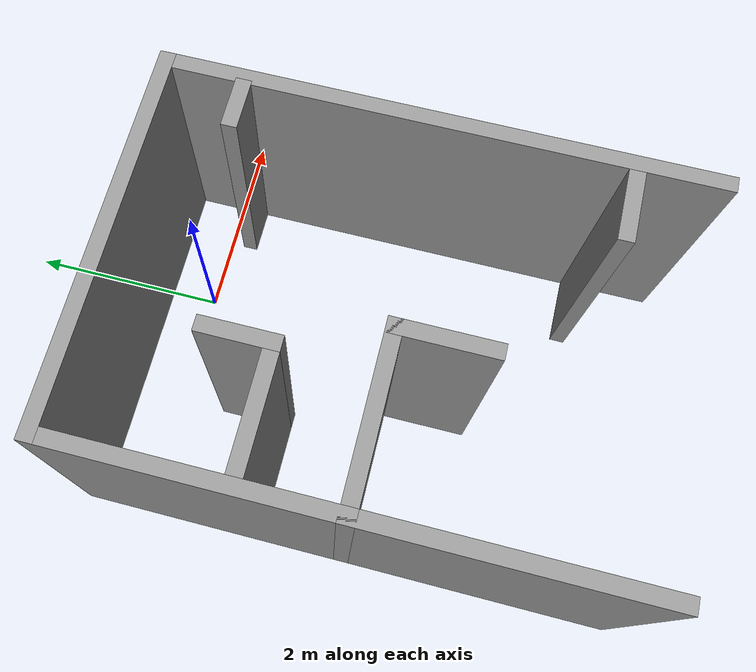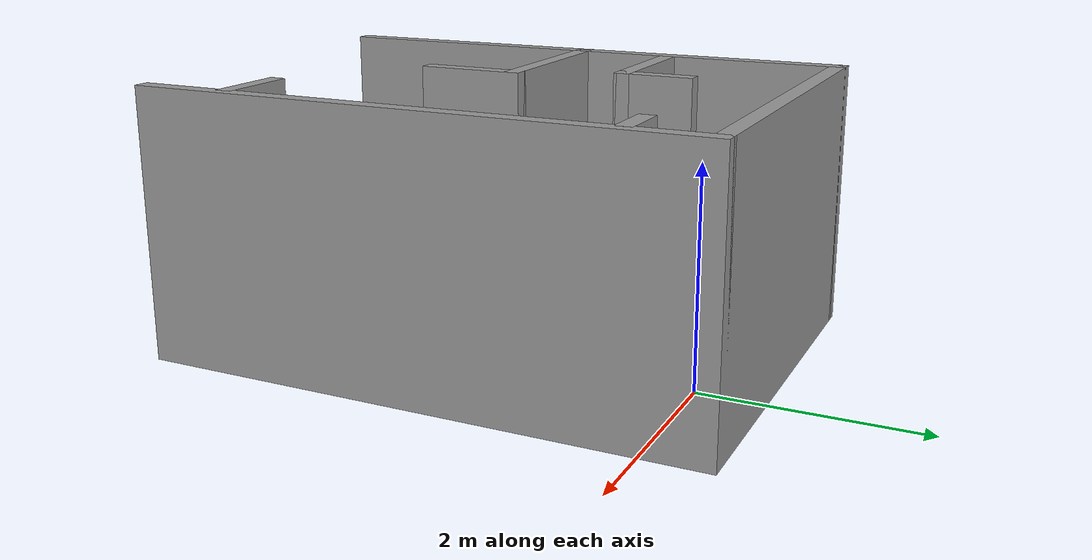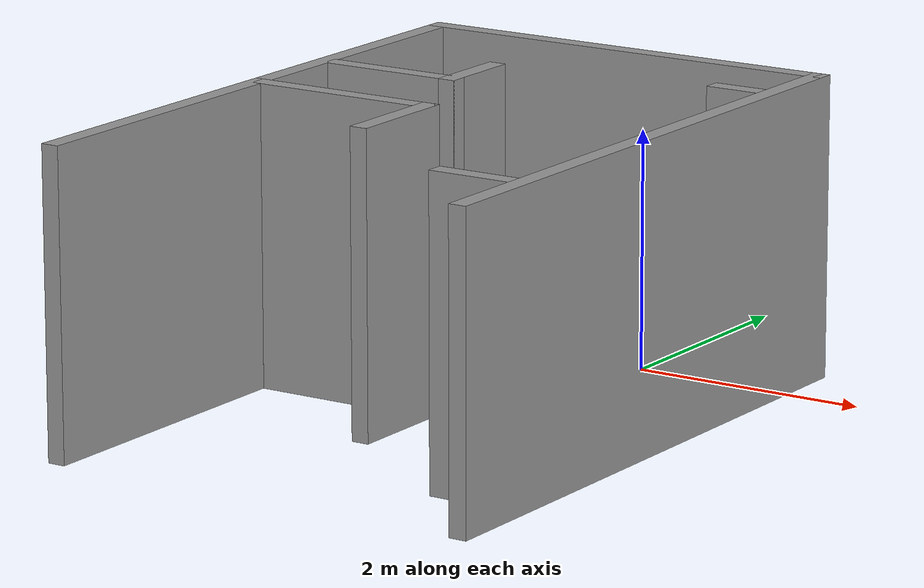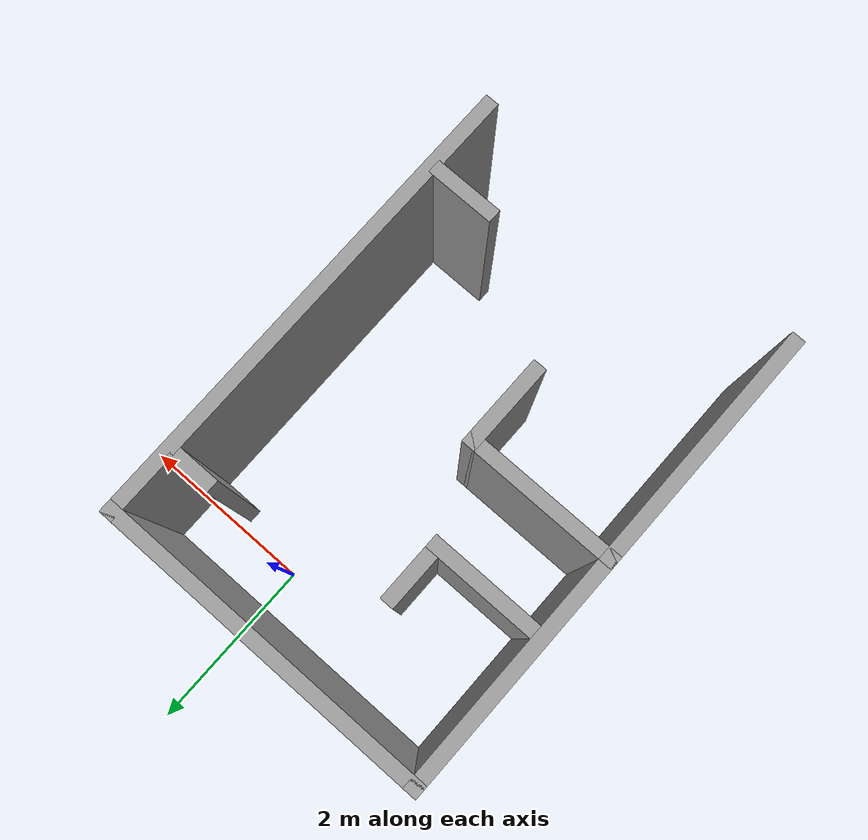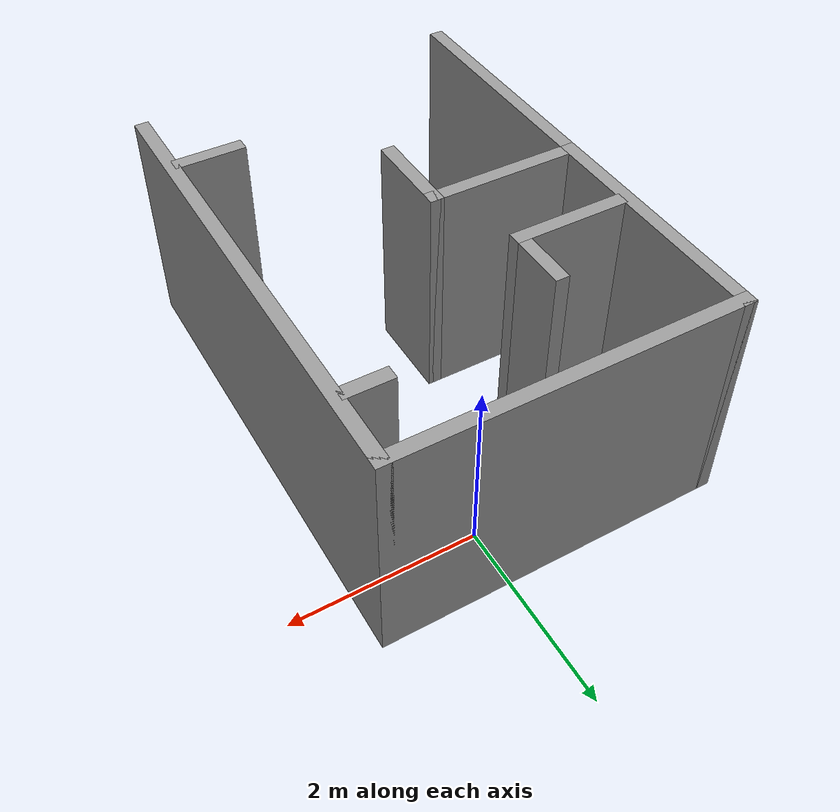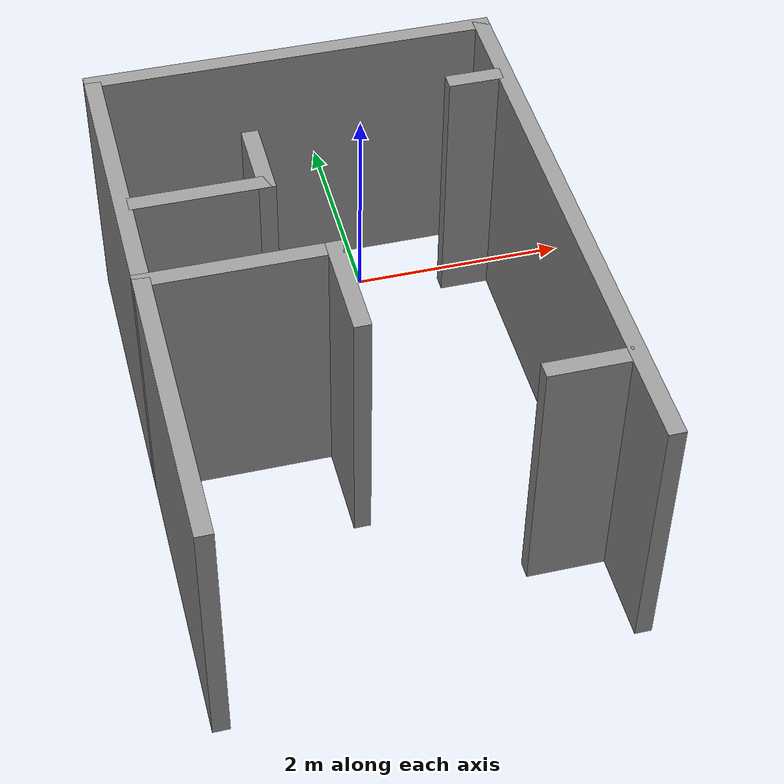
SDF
<?xml version='1.0'?>
<sdf version='1.7'>
  <model name='enclosed'>
    <pose>-0.52 -2.05 0 0 -0 0</pose>
    <link name='Wall_0'>
      <collision name='Wall_0_Collision'>
        <geometry>
          <box>
            <size>2.75 0.15 2.5</size>
          </box>
        </geometry>
        <pose>0 0 1.25 0 -0 0</pose>
      </collision>
      <visual name='Wall_0_Visual'>
        <pose>0 0 1.25 0 -0 0</pose>
        <geometry>
          <box>
            <size>2.75 0.15 2.5</size>
          </box>
        </geometry>
        <material>
          <script>
            <uri>file://media/materials/scripts/gazebo.material</uri>
            <name>Gazebo/Grey</name>
          </script>
          <ambient>1 1 1 1</ambient>
        </material>
        <meta>
          <layer>0</layer>
        </meta>
      </visual>
      <pose>-1.8 -1.3 0 0 -0 -1.5708</pose>
    </link>
    <link name='Wall_10'>
      <collision name='Wall_10_Collision'>
        <geometry>
          <box>
            <size>1.25 0.15 2.5</size>
          </box>
        </geometry>
        <pose>0 0 1.25 0 -0 0</pose>
      </collision>
      <visual name='Wall_10_Visual'>
        <pose>0 0 1.25 0 -0 0</pose>
        <geometry>
          <box>
            <size>1.25 0.15 2.5</size>
          </box>
        </geometry>
        <material>
          <script>
            <uri>file://media/materials/scripts/gazebo.material</uri>
            <name>Gazebo/Grey</name>
          </script>
          <ambient>1 1 1 1</ambient>
        </material>
        <meta>
          <layer>0</layer>
        </meta>
      </visual>
      <pose>-1.13128 0.924635 0 0 -0 0</pose>
    </link>
    <link name='Wall_11'>
      <collision name='Wall_11_Collision'>
        <geometry>
          <box>
            <size>0.75 0.15 2.5</size>
          </box>
        </geometry>
        <pose>0 0 1.25 0 -0 0</pose>
      </collision>
      <visual name='Wall_11_Visual'>
        <pose>0 0 1.25 0 -0 0</pose>
        <geometry>
          <box>
            <size>0.75 0.15 2.5</size>
          </box>
        </geometry>
        <material>
          <script>
            <uri>file://media/materials/scripts/gazebo.material</uri>
            <name>Gazebo/Grey</name>
          </script>
          <ambient>1 1 1 1</ambient>
        </material>
        <meta>
          <layer>0</layer>
        </meta>
      </visual>
      <pose>-0.581282 1.22463 0 0 -0 1.5708</pose>
    </link>
    <link name='Wall_13'>
      <collision name='Wall_13_Collision'>
        <geometry>
          <box>
            <size>0.5 0.15 2.5</size>
          </box>
        </geometry>
        <pose>0 0 1.25 0 -0 0</pose>
      </collision>
      <visual name='Wall_13_Visual'>
        <pose>0 0 1.25 0 -0 0</pose>
        <geometry>
          <box>
            <size>0.5 0.15 2.5</size>
          </box>
        </geometry>
        <material>
          <script>
            <uri>file://media/materials/scripts/gazebo.material</uri>
            <name>Gazebo/Grey</name>
          </script>
          <ambient>1 1 1 1</ambient>
        </material>
        <meta>
          <layer>0</layer>
        </meta>
      </visual>
      <pose>1.51734 1.85304 0 0 -0 3.14159</pose>
    </link>
    <link name='Wall_19'>
      <collision name='Wall_19_Collision'>
        <geometry>
          <box>
            <size>0.75 0.15 2.5</size>
          </box>
        </geometry>
        <pose>0 0 1.25 0 -0 0</pose>
      </collision>
      <visual name='Wall_19_Visual'>
        <pose>0 0 1.25 0 -0 0</pose>
        <geometry>
          <box>
            <size>0.75 0.15 2.5</size>
          </box>
        </geometry>
        <material>
          <script>
            <uri>file://media/materials/scripts/gazebo.material</uri>
            <name>Gazebo/Grey</name>
          </script>
          <ambient>1 1 1 1</ambient>
        </material>
        <meta>
          <layer>0</layer>
        </meta>
      </visual>
      <pose>1.40392 -1.71673 0 0 -0 0</pose>
    </link>
    <link name='Wall_3'>
      <collision name='Wall_3_Collision'>
        <geometry>
          <box>
            <size>2.75 0.15 2.5</size>
          </box>
        </geometry>
        <pose>0 0 1.25 0 -0 0</pose>
      </collision>
      <visual name='Wall_3_Visual'>
        <pose>0 0 1.25 0 -0 0</pose>
        <geometry>
          <box>
            <size>2.75 0.15 2.5</size>
          </box>
        </geometry>
        <material>
          <script>
            <uri>file://media/materials/scripts/gazebo.material</uri>
            <name>Gazebo/Grey</name>
          </script>
          <ambient>1 1 1 1</ambient>
        </material>
        <meta>
          <layer>0</layer>
        </meta>
      </visual>
      <pose>-1.8 1.3 0 0 -0 1.5708</pose>
    </link>
    <link name='Wall_4'>
      <collision name='Wall_4_Collision'>
        <geometry>
          <box>
            <size>3.75 0.15 2.5</size>
          </box>
        </geometry>
        <pose>0 0 1.25 0 -0 0</pose>
      </collision>
      <visual name='Wall_4_Visual'>
        <pose>0 0 1.25 0 -0 0</pose>
        <geometry>
          <box>
            <size>3.75 0.15 2.5</size>
          </box>
        </geometry>
        <material>
          <script>
            <uri>file://media/materials/scripts/gazebo.material</uri>
            <name>Gazebo/Grey</name>
          </script>
          <ambient>1 1 1 1</ambient>
        </material>
        <meta>
          <layer>0</layer>
        </meta>
      </visual>
      <pose>0 2.6 0 0 -0 0</pose>
    </link>
    <link name='Wall_5'>
      <collision name='Wall_5_Collision'>
        <geometry>
          <box>
            <size>5.25 0.15 2.5</size>
          </box>
        </geometry>
        <pose>0 0 1.25 0 -0 0</pose>
      </collision>
      <visual name='Wall_5_Visual'>
        <pose>0 0 1.25 0 -0 0</pose>
        <geometry>
          <box>
            <size>5.25 0.15 2.5</size>
          </box>
        </geometry>
        <material>
          <script>
            <uri>file://media/materials/scripts/gazebo.material</uri>
            <name>Gazebo/Grey</name>
          </script>
          <ambient>1 1 1 1</ambient>
        </material>
        <meta>
          <layer>0</layer>
        </meta>
      </visual>
      <pose>1.8 0.05 0 0 -0 -1.5708</pose>
    </link>
    <link name='Wall_7'>
      <collision name='Wall_7_Collision'>
        <geometry>
          <box>
            <size>1.75 0.15 2.5</size>
          </box>
        </geometry>
        <pose>0 0 1.25 0 -0 0</pose>
      </collision>
      <visual name='Wall_7_Visual'>
        <pose>0 0 1.25 0 -0 0</pose>
        <geometry>
          <box>
            <size>1.75 0.15 2.5</size>
          </box>
        </geometry>
        <material>
          <script>
            <uri>file://media/materials/scripts/gazebo.material</uri>
            <name>Gazebo/Grey</name>
          </script>
          <ambient>1 1 1 1</ambient>
        </material>
        <meta>
          <layer>0</layer>
        </meta>
      </visual>
      <pose>-1 -0 0 0 -0 0</pose>
    </link>
    <link name='Wall_8'>
      <collision name='Wall_8_Collision'>
        <geometry>
          <box>
            <size>1 0.15 2.5</size>
          </box>
        </geometry>
        <pose>0 0 1.25 0 -0 0</pose>
      </collision>
      <visual name='Wall_8_Visual'>
        <pose>0 0 1.25 0 -0 0</pose>
        <geometry>
          <box>
            <size>1 0.15 2.5</size>
          </box>
        </geometry>
        <material>
          <script>
            <uri>file://media/materials/scripts/gazebo.material</uri>
            <name>Gazebo/Grey</name>
          </script>
          <ambient>1 1 1 1</ambient>
        </material>
        <meta>
          <layer>0</layer>
        </meta>
      </visual>
      <pose>-0.2 -0.425 0 0 -0 -1.5708</pose>
    </link>
    <static>1</static>
  </model>
</sdf>
